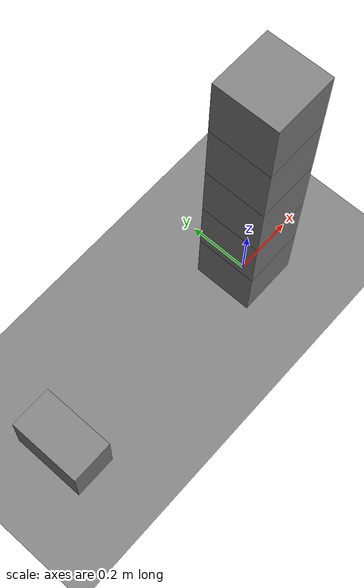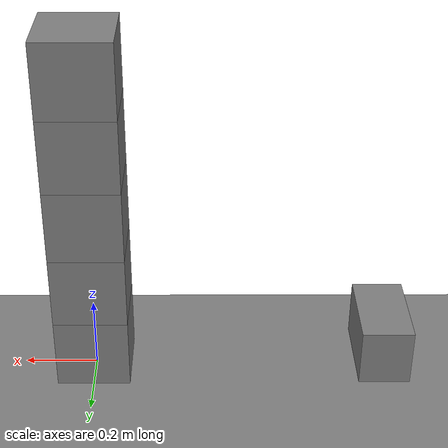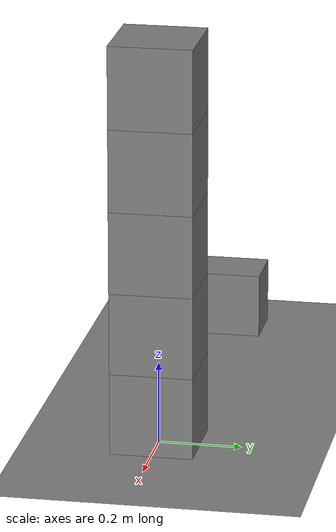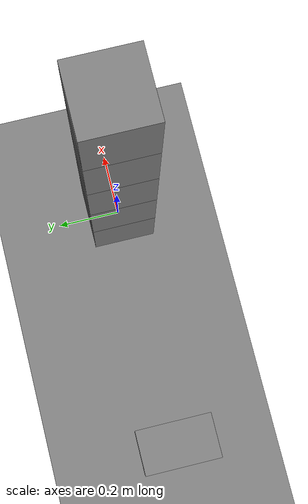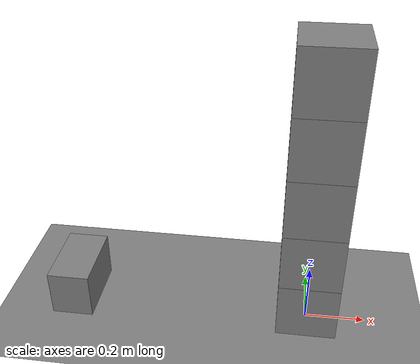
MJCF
<mujoco model="stack_push_topple">
  <option timestep="0.002"/>
  <worldbody>
    <geom name="floor" type="plane" size="6 6 0.1" friction="0.6 0.005 0.0001"/>
    <body name="block1" pos="0 0 0.100">
      <freejoint/>
      <geom name="block1" type="box" size="0.1 0.1 0.1" mass="0.5" friction="0.6 0.005 0.0001"/>
    </body>
    <body name="block2" pos="0 0 0.300">
      <freejoint/>
      <geom name="block2" type="box" size="0.1 0.1 0.1" mass="0.5" friction="0.6 0.005 0.0001"/>
    </body>
    <body name="block3" pos="0 0 0.500">
      <freejoint/>
      <geom name="block3" type="box" size="0.1 0.1 0.1" mass="0.5" friction="0.6 0.005 0.0001"/>
    </body>
    <body name="block4" pos="0 0 0.700">
      <freejoint/>
      <geom name="block4" type="box" size="0.1 0.1 0.1" mass="0.5" friction="0.6 0.005 0.0001"/>
    </body>
    <body name="block5" pos="0 0 0.900">
      <freejoint/>
      <geom name="block5" type="box" size="0.1 0.1 0.1" mass="0.5" friction="0.6 0.005 0.0001"/>
    </body>
    <body name="pusher" pos="-0.8 0 0.1">
      <joint name="pusher_slide" type="slide" axis="1 0 0" limited="true" range="0 1.2"/>
      <geom name="pusher" type="box" size="0.07 0.12 0.08" mass="4" friction="0.3 0.005 0.0001"/>
    </body>
  </worldbody>
  <actuator>
    <velocity name="push_motor" joint="pusher_slide" kv="200" ctrllimited="true" ctrlrange="0 1" forcelimited="true" forcerange="-80 80"/>
  </actuator>
  <keyframe>
    <key name="start" qpos="0 0 0.100 1 0 0 0  0 0 0.300 1 0 0 0  0 0 0.500 1 0 0 0  0 0 0.700 1 0 0 0  0 0 0.900 1 0 0 0  0" ctrl="1"/>
  </keyframe>
</mujoco>
